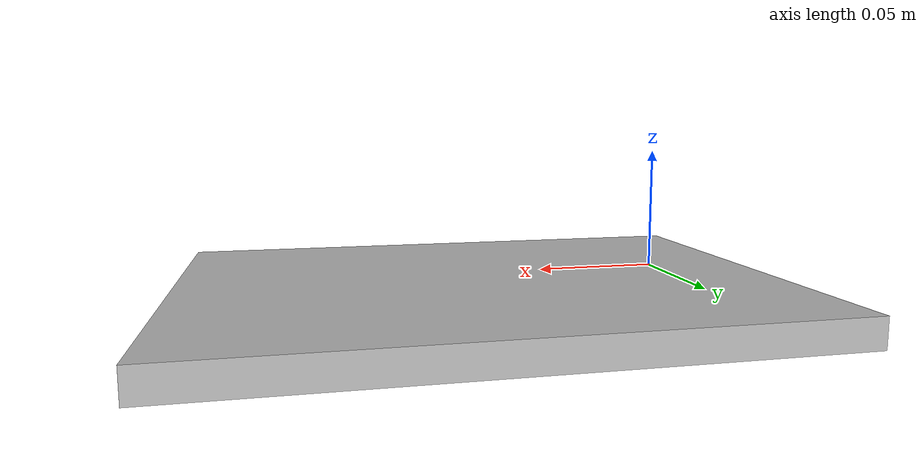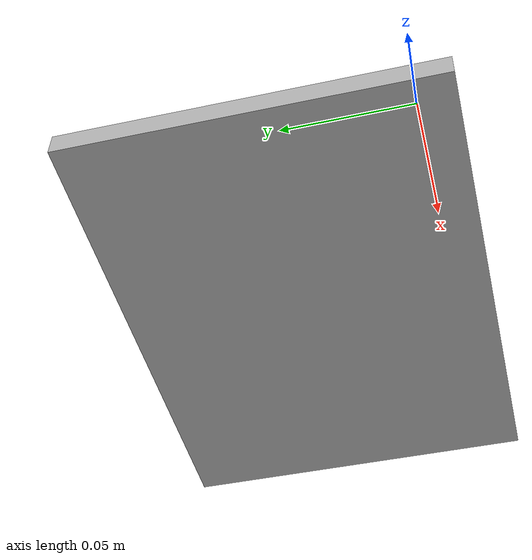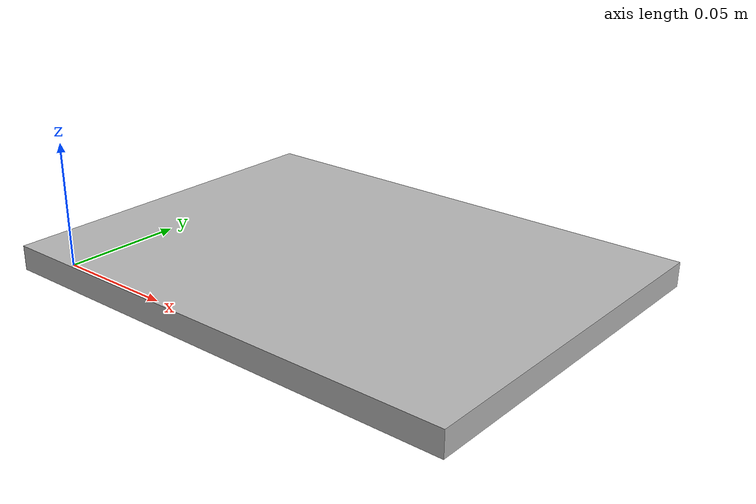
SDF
<?xml version="1.0"?>
<sdf version="1.4">
  <model name="charuco_200x150_4x6_30_22_DICT_6X6">
    <static>1</static>
    <link name="charuco">
      <pose>0 0 0 0 0 0</pose>
      <visual name="visual">
        <geometry>
          <mesh>
            <uri>model://charuco_200x150_4x6_30_22_DICT_6X6/model.dae</uri>
          </mesh>
        </geometry>
      </visual>
      <collision name="collision">
        <geometry>
          <mesh>
            <uri>model://charuco_200x150_4x6_30_22_DICT_6X6/model.dae</uri>
          </mesh>
        </geometry>
      </collision>
    </link>
  </model>
</sdf>
